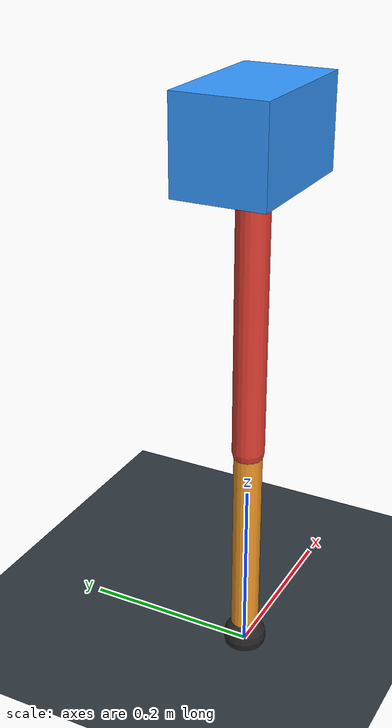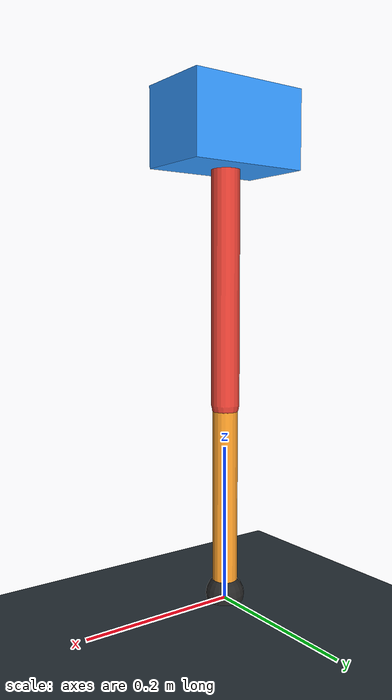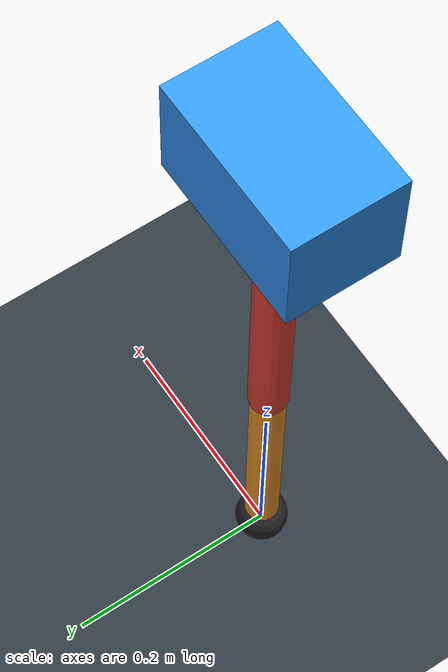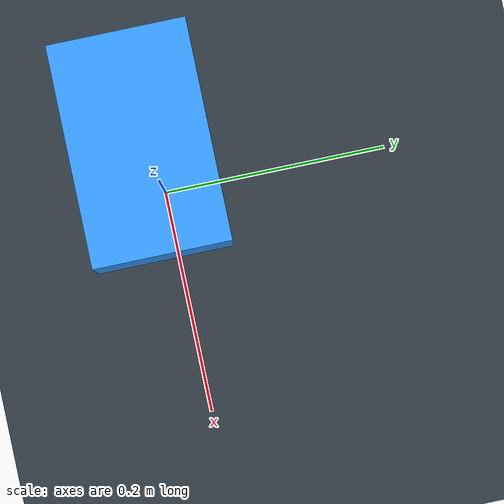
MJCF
<mujoco model="single_axis_two_bar">
  <compiler angle="radian" inertiafromgeom="true"/>
  <option timestep="0.001" integrator="implicitfast" gravity="0 0 -9.81"/>
  <default>
    <joint damping="0.08"/>
    <geom friction="1.2 0.01 0.0001" condim="3"/>
  </default>
  <worldbody>
    <geom name="floor" type="plane" size="5 5 0.1" rgba="0.18 0.22 0.25 1"/>
    <body name="carriage" pos="0 0 0.6011274859900217">
      <joint name="pole_slide" type="slide" axis="0 0 1"/>
      <geom name="payload" type="box" size="0.08 0.05 0.05" mass="2.389096561821466" rgba="0.2 0.6 1 1"/>
      <body name="thigh" pos="0 0 0">
        <joint name="hip" type="hinge" axis="0 1 0"/>
        <geom name="thigh_link" type="capsule" fromto="0 0 0 0 0 -0.34650085413295306" size="0.018" mass="0.2468864371745536" rgba="0.9 0.25 0.2 1"/>
        <body name="shank" pos="0 0 -0.34650085413295306">
          <joint name="knee" type="hinge" axis="0 1 0"/>
          <geom name="shank_link" type="capsule" fromto="0 0 0 0 0 -0.2474450077124302" size="0.016" mass="0.17630783769240338" rgba="0.95 0.6 0.15 1"/>
          <geom name="foot" type="sphere" pos="0 0 -0.2474450077124302" size="0.025" mass="0.03" rgba="0.15 0.15 0.15 1"/>
          <site name="toe" pos="0 0 -0.2474450077124302" size="0.008"/>
        </body>
      </body>
    </body>
  </worldbody>
  <actuator>
    <motor name="hip_motor" joint="hip" ctrlrange="-24.855601042543185 24.855601042543185"/>
    <motor name="knee_motor" joint="knee" ctrlrange="-104.14215447103003 104.14215447103003"/>
  </actuator>
</mujoco>
